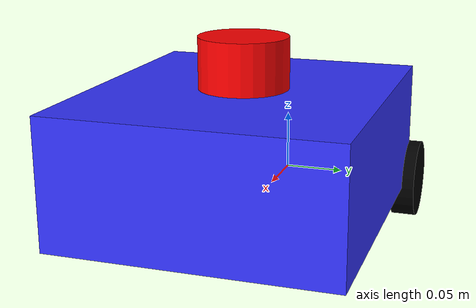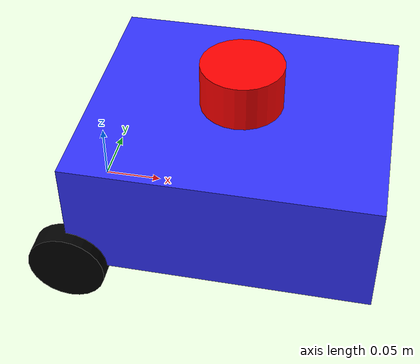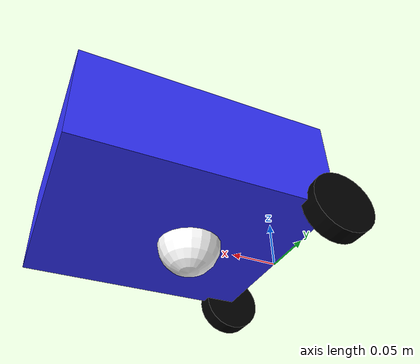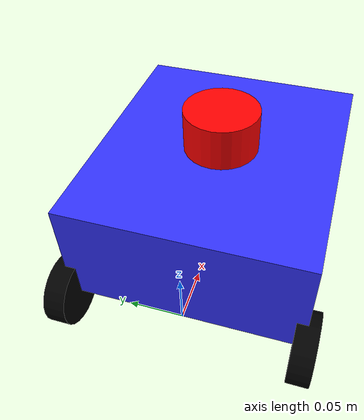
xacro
<?xml version="1.0"?>
<robot xmlns:xacro="http://www.ros.org/wiki/xacro" name="my_robot">

    <!-- PROPERTIES -->
    <xacro:property name="chassis_length" value="0.25"/>
    <xacro:property name="chassis_width" value="0.22"/>
    <xacro:property name="chassis_height" value="0.10"/>
    <xacro:property name="chassis_mass" value="1.0"/>

    <xacro:property name="wheel_radius" value="0.0325"/>
    <xacro:property name="wheel_thickness" value="0.02"/>
    <xacro:property name="wheel_mass" value="0.1"/>
    <xacro:property name="wheel_offset_x" value="0.0"/>
    <xacro:property name="wheel_offset_y" value="${chassis_width/2 + wheel_thickness/2}"/>
    <xacro:property name="wheel_separation" value="0.22"/>

    <xacro:property name="caster_radius" value="0.0325"/>
    <xacro:property name="caster_mass" value="0.1"/>
    <xacro:property name="caster_offset_x" value="0.1"/>

    <!-- NEW LIDAR PROPERTIES -->
    <xacro:property name="lidar_radius" value="0.035"/> <!-- Approx A1 Size -->
    <xacro:property name="lidar_height" value="0.04"/>
    <xacro:property name="lidar_mass" value="0.17"/>

    <!-- MATERIALS -->
    <material name="blue">
        <color rgba="0.2 0.2 1 1"/>
    </material>
    <material name="black">
        <color rgba="0 0 0 1"/>
    </material>
    <material name="white">
        <color rgba="1 1 1 1"/>
    </material>
    <!-- Added Red for Lidar -->
    <material name="red">
        <color rgba="1 0 0 1"/>
    </material>

    <!-- INERTIAL MACROS -->
    <xacro:macro name="box_inertia" params="mass x y z">
        <inertial>
            <mass value="${mass}"/>
            <inertia ixx="${(1/12) * mass * (y*y+z*z)}" ixy="0.0" ixz="0.0"
                     iyy="${(1/12) * mass * (x*x+z*z)}" iyz="0.0"
                     izz="${(1/12) * mass * (x*x+y*y)}"/>
        </inertial>
    </xacro:macro>

    <xacro:macro name="cylinder_inertia" params="mass r h">
        <inertial>
            <mass value="${mass}"/>
            <inertia ixx="${(1/12) * mass * (3*r*r + h*h)}" ixy="0" ixz="0"
                     iyy="${(1/12) * mass * (3*r*r + h*h)}" iyz="0"
                     izz="${(1/2) * mass * (r*r)}"/>
        </inertial>
    </xacro:macro>

    <xacro:macro name="sphere_inertia" params="mass r">
        <inertial>
            <mass value="${mass}"/>
            <inertia ixx="${(2/5) * mass * (r*r)}" ixy="0.0" ixz="0.0"
                     iyy="${(2/5) * mass * (r*r)}" iyz="0.0"
                     izz="${(2/5) * mass * (r*r)}"/>
        </inertial>
    </xacro:macro>

    <!-- BASE LINK (Virtual) -->
    <link name="base_footprint">
    </link>

    <!-- CHASSIS LINK -->
    <joint name="base_link_joint" type="fixed">
        <parent link="base_footprint"/>
        <child link="base_link"/>
        <origin xyz="${-wheel_offset_x} 0 0"/>
    </joint>

    <link name="base_link">
        <visual>
            <origin xyz="${chassis_length/2} 0 ${chassis_height/2}"/>
            <geometry>
                <box size="${chassis_length} ${chassis_width} ${chassis_height}"/>
            </geometry>
            <material name="blue"/>
        </visual>
        <collision>
            <origin xyz="${chassis_length/2} 0 ${chassis_height/2}"/>
            <geometry>
                <box size="${chassis_length} ${chassis_width} ${chassis_height}"/>
            </geometry>
        </collision>
        <xacro:box_inertia mass="${chassis_mass}" x="${chassis_length}" y="${chassis_width}" z="${chassis_height}"/>
    </link>

    <!-- WHEEL MACRO -->
    <xacro:macro name="wheel" params="prefix y_reflect">
        <link name="${prefix}_wheel">
            <visual>
                <origin xyz="0 0 0" rpy="${pi/2} 0 0"/>
                <geometry>
                    <cylinder radius="${wheel_radius}" length="${wheel_thickness}"/>
                </geometry>
                <material name="black"/>
            </visual>
            <collision>
                <origin xyz="0 0 0" rpy="${pi/2} 0 0"/>
                <geometry>
                    <cylinder radius="${wheel_radius}" length="${wheel_thickness}"/>
                </geometry>
            </collision>
            <xacro:cylinder_inertia mass="${wheel_mass}" r="${wheel_radius}" h="${wheel_thickness}"/>
        </link>

        <joint name="${prefix}_wheel_joint" type="continuous">
            <parent link="base_link"/>
            <child link="${prefix}_wheel"/>
            <origin xyz="0 ${y_reflect * (wheel_separation/2)} 0" rpy="0 0 0"/>
            <axis xyz="0 1 0"/>
        </joint>
    </xacro:macro>

    <xacro:wheel prefix="left" y_reflect="1"/>
    <xacro:wheel prefix="right" y_reflect="-1"/>

    <!-- CASTER WHEEL -->
    <joint name="caster_joint" type="fixed">
        <parent link="base_link"/>
        <child link="caster_wheel"/>
        <origin xyz="${caster_offset_x} 0 0"/>
    </joint>

    <link name="caster_wheel">
        <visual>
            <geometry>
                <sphere radius="${caster_radius}"/>
            </geometry>
            <material name="white"/>
        </visual>
        <collision>
            <geometry>
                <sphere radius="${caster_radius}"/>
            </geometry>
        </collision>
        <xacro:sphere_inertia mass="${caster_mass}" r="${caster_radius}"/>
    </link>

    <link name="imu_link">
        <visual>
            <geometry>
                <box size="0.01 0.01 0.01"/>
            </geometry>
            <material name="black"/>
        </visual>
    </link>

    <joint name="imu_joint" type="fixed">
        <parent link="base_link"/>
        <child link="imu_link"/>
        <origin xyz="0.06 0.04 0.03" rpy="0 0 0"/>
    </joint>

    <link name="laser">
        <visual>
            <geometry>
                <cylinder radius="${lidar_radius}" length="${lidar_height}"/>
            </geometry>
            <material name="red"/>
        </visual>
        <collision>
            <geometry>
                <cylinder radius="${lidar_radius}" length="${lidar_height}"/>
            </geometry>
        </collision>
        <xacro:cylinder_inertia mass="${lidar_mass}" r="${lidar_radius}" h="${lidar_height}"/>
    </link>

    <joint name="lidar_joint" type="fixed">
        <parent link="base_link"/>
        <child link="laser"/>
        <origin xyz="${chassis_length/2} 0 ${chassis_height + (lidar_height/2)}" rpy="0 0 3.14159"/>
    </joint>

</robot>
